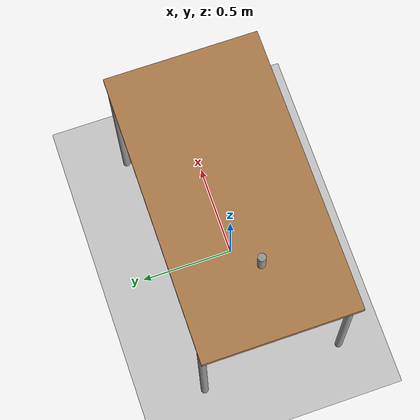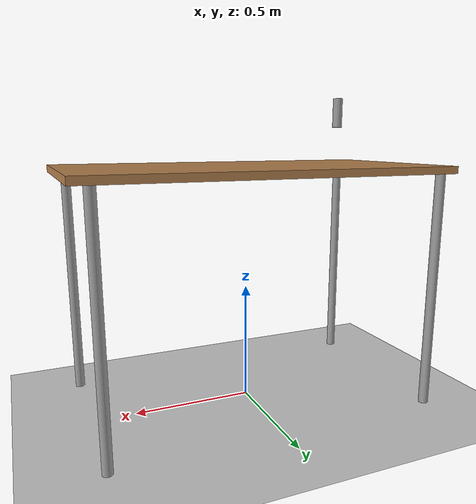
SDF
<?xml version="1.0" ?>
<sdf version="1.5">
  <world name="default">
    <include>
      <uri>model://sun</uri>
    </include>
    <include>
      <uri>model://ground_plane</uri>
    </include>
    <include>
      <uri>model://table</uri>
      <pose> 0 0 0 0 0 0 </pose>
    </include>
    <include>
      <uri>model://object</uri>
      <pose> -0.43 0 1.23 0 0 0 </pose>
    </include>
    <physics type="ode">
      <gravity>0.000000 0.000000 -9.810000</gravity>
      <ode>
        <solver>
          <type>quick</type>
          <iters>100</iters>
          <precon_iters>0</precon_iters>
          <sor>1.000000</sor>
        </solver>
        <constraints>
          <cfm>0.000000</cfm>
          <erp>0.500000</erp>
          <contact_max_correcting_vel>1000.000000</contact_max_correcting_vel>
          <contact_surface_layer>0.00000</contact_surface_layer>
        </constraints>
      </ode>
    </physics>
  </world>
</sdf>

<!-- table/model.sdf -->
<sdf version="1.5">
  <model name="table">
    <static>true</static>
    <link name="link">
      <collision name="surface">
        <pose>0 0 1.0 0 0 0</pose>
        <geometry>
          <box>
            <size>1.5 0.8 0.03</size>
          </box>
        </geometry>
        <surface>
          <friction>
            <ode>
              <mu>0.6</mu>
              <mu2>0.6</mu2>
            </ode>
          </friction>
        </surface>
      </collision>
      <visual name="visual1">
        <pose>0 0 1.0 0 0 0</pose>
        <geometry>
          <box>
            <size>1.5 0.8 0.03</size>
          </box>
        </geometry>
        <material>
          <script>
            <uri>model://media/materials/scripts/gazebo.material</uri>
            <name>Gazebo/Wood</name>
          </script>
        </material>
      </visual>
      <collision name="front_left_leg">
        <pose>0.68 0.38 0.5 0 0 0</pose>
        <geometry>
          <cylinder>
            <radius>0.02</radius>
            <length>1.0</length>
          </cylinder>
        </geometry>
      </collision>
      <visual name="front_left_leg">
        <pose>0.68 0.38 0.5 0 0 0</pose>
        <geometry>
          <cylinder>
            <radius>0.02</radius>
            <length>1.0</length>
          </cylinder>
        </geometry>
        <material>
          <script>
            <uri>model://media/materials/scripts/gazebo.material</uri>
            <name>Gazebo/Grey</name>
          </script>
        </material>
      </visual>
      <collision name="front_right_leg">
        <pose>0.68 -0.38 0.5 0 0 0</pose>
        <geometry>
          <cylinder>
            <radius>0.02</radius>
            <length>1.0</length>
          </cylinder>
        </geometry>
      </collision>
      <visual name="front_right_leg">
        <pose>0.68 -0.38 0.5 0 0 0</pose>
        <geometry>
          <cylinder>
            <radius>0.02</radius>
            <length>1.0</length>
          </cylinder>
        </geometry>
        <material>
          <script>
            <uri>model://media/materials/scripts/gazebo.material</uri>
            <name>Gazebo/Grey</name>
          </script>
        </material>
      </visual>
      <collision name="back_right_leg">
        <pose>-0.68 -0.38 0.5 0 0 0</pose>
        <geometry>
          <cylinder>
            <radius>0.02</radius>
            <length>1.0</length>
          </cylinder>
        </geometry>
      </collision>
      <visual name="back_right_leg">
        <pose>-0.68 -0.38 0.5 0 0 0</pose>
        <geometry>
          <cylinder>
            <radius>0.02</radius>
            <length>1.0</length>
          </cylinder>
        </geometry>
        <material>
          <script>
            <uri>model://media/materials/scripts/gazebo.material</uri>
            <name>Gazebo/Grey</name>
          </script>
        </material>
      </visual>
      <collision name="back_left_leg">
        <pose>-0.68 0.38 0.5 0 0 0</pose>
        <geometry>
          <cylinder>
            <radius>0.02</radius>
            <length>1.0</length>
          </cylinder>
        </geometry>
      </collision>
      <visual name="back_left_leg">
        <pose>-0.68 0.38 0.5 0 0 0</pose>
        <geometry>
          <cylinder>
            <radius>0.02</radius>
            <length>1.0</length>
          </cylinder>
        </geometry>
        <material>
          <script>
            <uri>model://media/materials/scripts/gazebo.material</uri>
            <name>Gazebo/Grey</name>
          </script>
        </material>
      </visual>
    </link>
  </model>
</sdf>

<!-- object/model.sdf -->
<sdf version="1.5">
  <model name="object">
    <link name="object">
      <inertial>
        <mass>0.5</mass>
        <inertia>
          <ixx>0.01</ixx>
          <ixy>0.0</ixy>
          <ixz>0.0</ixz>
          <iyy>0.01</iyy>
          <iyz>0.0</iyz>
          <izz>0.01</izz>
        </inertia>
      </inertial>
      <collision name="cylinder">
        <pose>0 0 0 0 0 0</pose>
        <geometry>
          <cylinder>
            <radius>0.02</radius>
            <length>0.12</length>
          </cylinder>
        </geometry>
        <surface>
          <friction>
            <ode>
              <mu>30.0</mu>
              <mu2>30.0</mu2>
              <kp>1000000.0</kp>
              <kd>100.0</kd>
            </ode>
          </friction>
        </surface>
      </collision>
      <visual name="cylinder">
        <pose>0 0 0 0 0 0</pose>
        <geometry>
          <cylinder>
            <radius>0.02</radius>
            <length>0.12</length>
          </cylinder>
        </geometry>
        <material>
          <script>
            <uri>file://media/materials/scripts/gazebo.material</uri>
            <name>Gazebo/Grey</name>
          </script>
        </material>
      </visual>
      <gravity>1</gravity>
    </link>
  </model>
</sdf>
